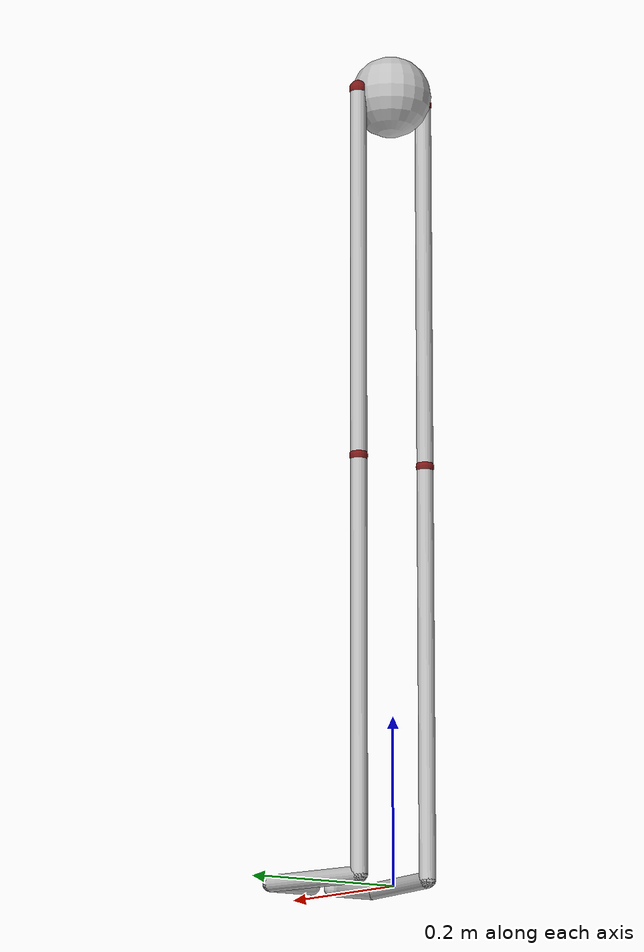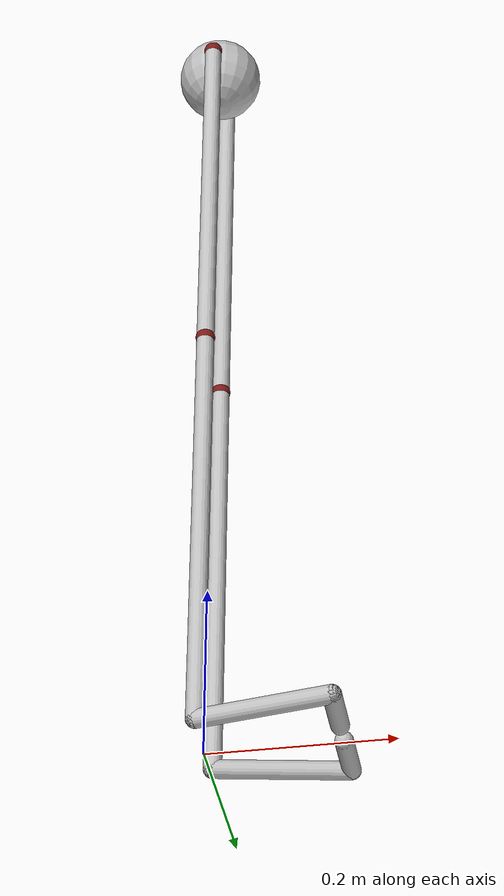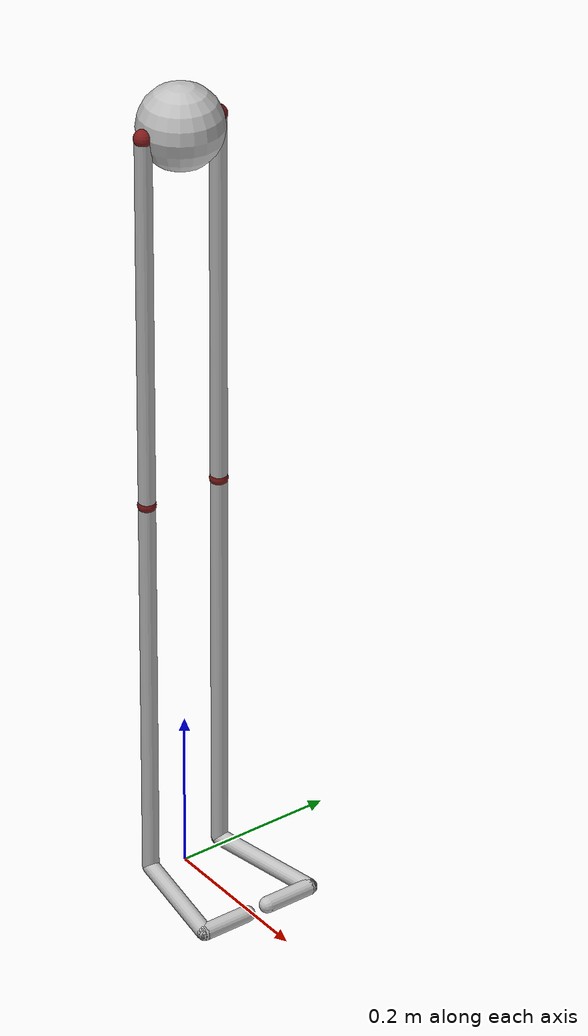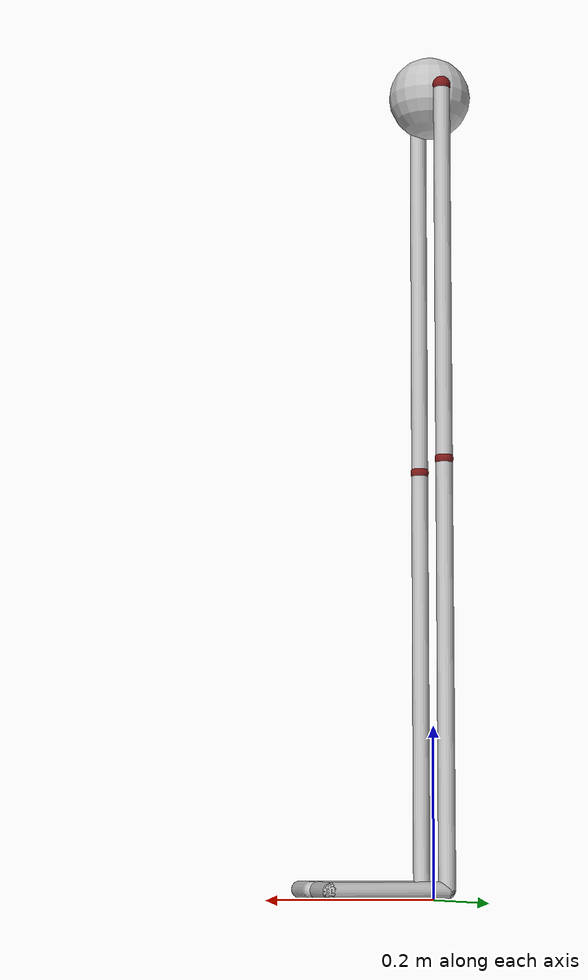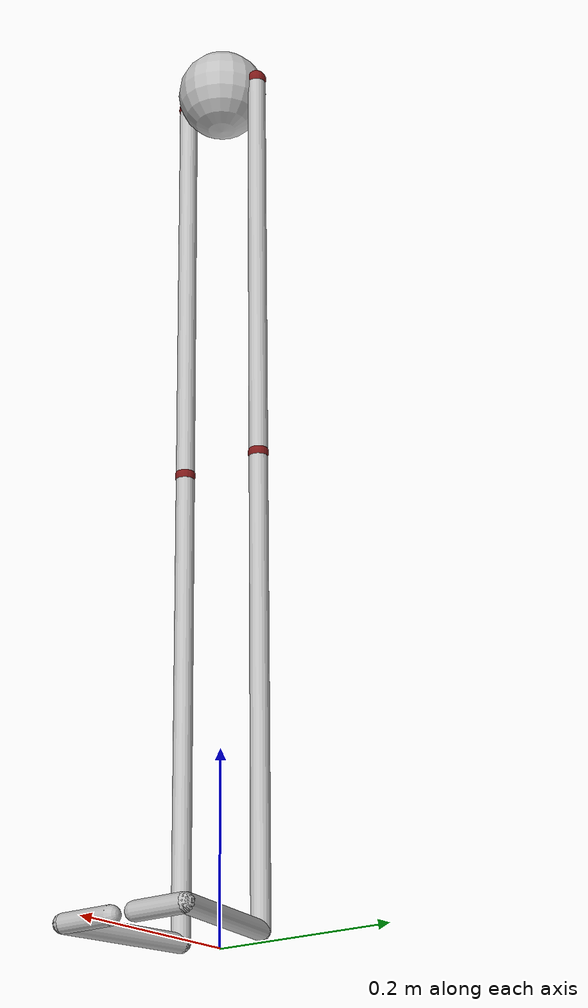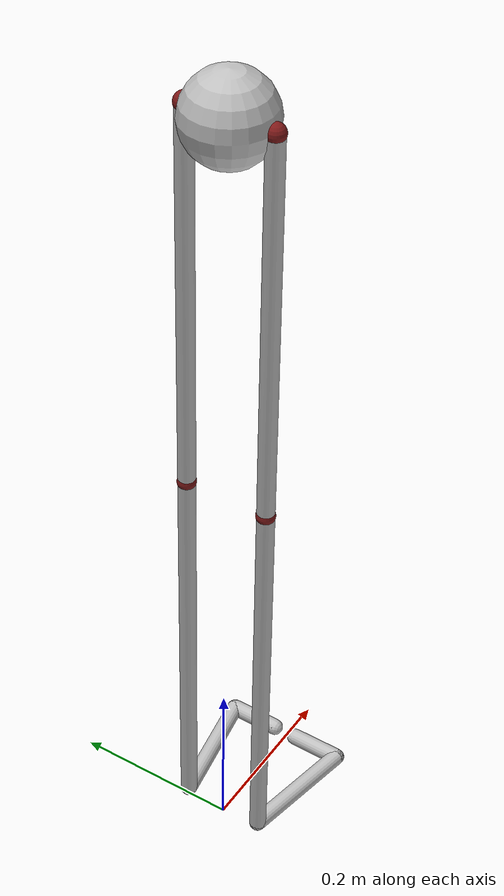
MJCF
<?xml version="1.0" ?>
<mujoco>
    <default>
        <joint armature="0.0" damping="0.01" type="hinge" range="-150 0" axis="0 -1 0"/>
        <geom condim="3" friction="1.5 1.0 1.0" margin="0.001"/>
        <default class="motor">
            <cylinder gear="100" ctrllimited="true" ctrlrange="-1 1"/>
        </default>
    </default>
    <worldbody>
        <body name="Base" pos="0.0 0.0 0.9749507726569254">
            <joint type="free"/>
            <geom type="sphere" rgba="0.75 0.75 0.75 1.0" size="0.05" mass="0.02"/>
            <body name="rod_0.1" pos="0.0 -0.05 -0.2318248397254144">
                <geom name="geom_0.1" type="capsule" fromto="-0.0 -0.0 0.2318248397254144 0.0 0.0 -0.2318248397254144" size="0.01" rgba="0.75 0.75 0.75 1.0" density="159.15494309189535"/>
                <site name="site_0.1" pos="0 0 0" quat="0.7071067811865476 -0.0 0.7071067811865476 0.0"/>
                <joint name="joint_Base=rod_0.1" pos="-0.0 -0.0 0.2318248397254144" range="-45 45"/>
                <body name="p0" pos="-0.0 -0.0 0.2318248397254144">
                    <geom type="sphere" size="0.011000000000000001" rgba="0.5 0.1 0.1 1.0" density="23873.2414637843"/>
                    <site name="p0"/>
                </body>
                <body name="rod_1.2" pos="0.0 0.0 -0.48172538632846273">
                    <geom name="geom_1.2" type="capsule" fromto="-0.0 -0.0 0.24990054660304833 0.0 0.0 -0.24990054660304833" size="0.01" rgba="0.75 0.75 0.75 1.0" density="159.15494309189535"/>
                    <site name="site_1.2" pos="0 0 0" quat="0.7071067811865476 -0.0 0.7071067811865476 0.0"/>
                    <joint name="joint_rod_0.1=rod_1.2" pos="-0.0 -0.0 0.24990054660304833" range="-150 0"/>
                    <body name="p1" pos="-0.0 -0.0 0.24990054660304833">
                        <geom type="sphere" size="0.011000000000000001" rgba="0.5 0.1 0.1 1.0" density="23873.2414637843"/>
                        <site name="p1"/>
                    </body>
                    <body name="rod_2.3" pos="0.07117122723340559 -0.012500000000000004 -0.24990054660304833">
                        <geom name="geom_2.3" type="capsule" fromto="-0.07117122723340559 0.012500000000000004 -0.0 0.07117122723340559 -0.012500000000000004 0.0" size="0.01" rgba="0.75 0.75 0.75 1.0" density="159.15494309189535"/>
                        <site name="site_2.3" pos="0 0 0" quat="0.9962239849902447 0.0 0.0 -0.08682034168417378"/>
                        <body name="rod_3.4" pos="0.07117122723340559 0.017499999999999995 0.0">
                            <geom name="geom_3.4" type="capsule" fromto="-0.0 -0.03 -0.0 0.0 0.03 0.0" size="0.01" rgba="0.75 0.75 0.75 1.0" density="159.15494309189535"/>
                            <site name="site_3.4" pos="0 0 0" quat="0.7071067811865476 0.0 0.0 0.7071067811865476"/>
                        </body>
                    </body>
                </body>
            </body>
            <body name="rod_5.6" pos="0.0 0.05 -0.2318248397254144">
                <geom name="geom_5.6" type="capsule" fromto="-0.0 -0.0 0.2318248397254144 0.0 0.0 -0.2318248397254144" size="0.01" rgba="0.75 0.75 0.75 1.0" density="159.15494309189535"/>
                <site name="site_5.6" pos="0 0 0" quat="0.7071067811865476 -0.0 0.7071067811865476 0.0"/>
                <joint name="joint_Base=rod_5.6" pos="-0.0 -0.0 0.2318248397254144" range="-45 45"/>
                <body name="p5" pos="-0.0 -0.0 0.2318248397254144">
                    <geom type="sphere" size="0.011000000000000001" rgba="0.5 0.1 0.1 1.0" density="23873.2414637843"/>
                    <site name="p5"/>
                </body>
                <body name="rod_6.7" pos="0.0 0.0 -0.48172538632846273">
                    <geom name="geom_6.7" type="capsule" fromto="-0.0 -0.0 0.24990054660304833 0.0 0.0 -0.24990054660304833" size="0.01" rgba="0.75 0.75 0.75 1.0" density="159.15494309189535"/>
                    <site name="site_6.7" pos="0 0 0" quat="0.7071067811865476 -0.0 0.7071067811865476 0.0"/>
                    <joint name="joint_rod_5.6=rod_6.7" pos="-0.0 -0.0 0.24990054660304833" range="-150 0"/>
                    <body name="p6" pos="-0.0 -0.0 0.24990054660304833">
                        <geom type="sphere" size="0.011000000000000001" rgba="0.5 0.1 0.1 1.0" density="23873.2414637843"/>
                        <site name="p6"/>
                    </body>
                    <body name="rod_7.8" pos="0.07117122723340559 0.012500000000000004 -0.24990054660304833">
                        <geom name="geom_7.8" type="capsule" fromto="-0.07117122723340559 -0.012500000000000004 -0.0 0.07117122723340559 0.012500000000000004 0.0" size="0.01" rgba="0.75 0.75 0.75 1.0" density="159.15494309189535"/>
                        <site name="site_7.8" pos="0 0 0" quat="0.9962239849902447 0.0 0.0 0.08682034168417378"/>
                        <body name="rod_8.9" pos="0.07117122723340559 -0.017499999999999995 0.0">
                            <geom name="geom_8.9" type="capsule" fromto="-0.0 0.03 -0.0 0.0 -0.03 0.0" size="0.01" rgba="0.75 0.75 0.75 1.0" density="159.15494309189535"/>
                            <site name="site_8.9" pos="0 0 0" quat="0.7071067811865476 0.0 0.0 -0.7071067811865476"/>
                        </body>
                    </body>
                </body>
            </body>
        </body>
    </worldbody>
    <actuator/>
    <sensor>
        <accelerometer site="site_0.1"/>
        <gyro site="site_0.1"/>
        <magnetometer site="site_0.1"/>
        <accelerometer site="site_1.2"/>
        <gyro site="site_1.2"/>
        <magnetometer site="site_1.2"/>
        <accelerometer site="site_2.3"/>
        <gyro site="site_2.3"/>
        <magnetometer site="site_2.3"/>
        <accelerometer site="site_3.4"/>
        <gyro site="site_3.4"/>
        <magnetometer site="site_3.4"/>
        <accelerometer site="site_5.6"/>
        <gyro site="site_5.6"/>
        <magnetometer site="site_5.6"/>
        <accelerometer site="site_6.7"/>
        <gyro site="site_6.7"/>
        <magnetometer site="site_6.7"/>
        <accelerometer site="site_7.8"/>
        <gyro site="site_7.8"/>
        <magnetometer site="site_7.8"/>
        <accelerometer site="site_8.9"/>
        <gyro site="site_8.9"/>
        <magnetometer site="site_8.9"/>
    </sensor>
    <contact>
        <pair geom1="geom_0.1" geom2="floor"/>
        <pair geom1="geom_1.2" geom2="floor"/>
        <pair geom1="geom_2.3" geom2="floor"/>
        <pair geom1="geom_3.4" geom2="floor"/>
        <pair geom1="geom_5.6" geom2="floor"/>
        <pair geom1="geom_6.7" geom2="floor"/>
        <pair geom1="geom_7.8" geom2="floor"/>
        <pair geom1="geom_8.9" geom2="floor"/>
    </contact>
</mujoco>
